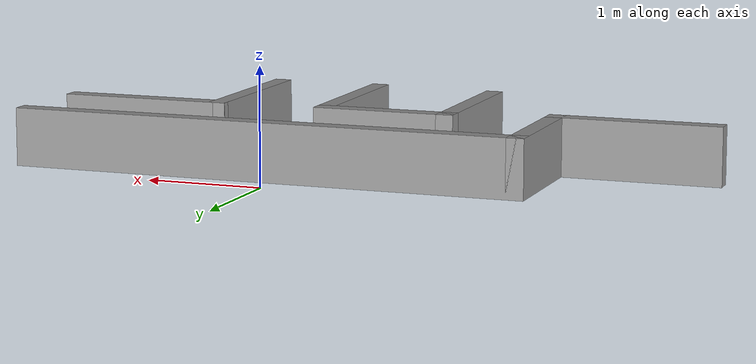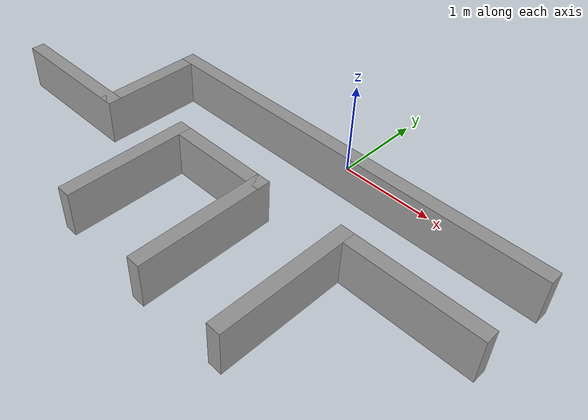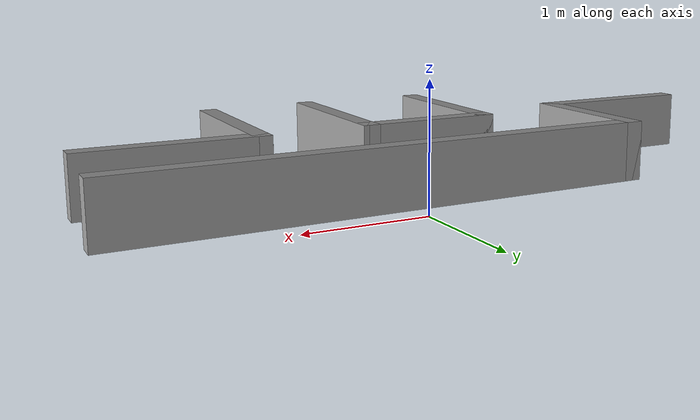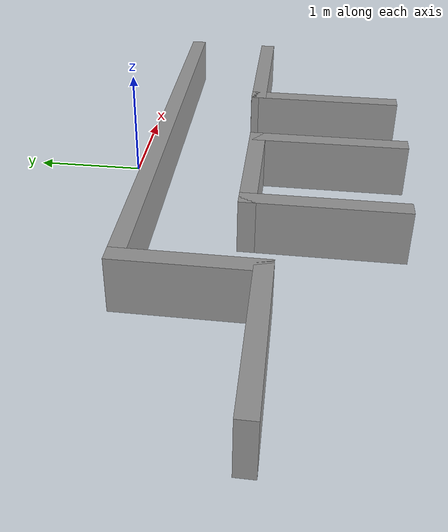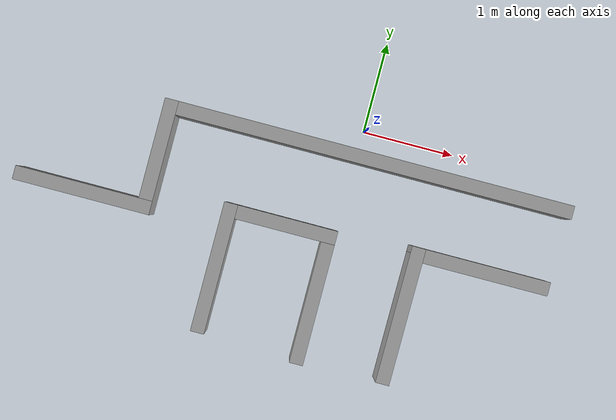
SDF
<?xml version='1.0'?>
<sdf version='1.7'>
  <model name='paredes-labirinto'>
    <pose>-0.58 -1.2975 0 0 -0 0</pose>
    <link name='Wall_0'>
      <collision name='Wall_0_Collision'>
        <geometry>
          <box>
            <size>1.5 0.15 0.5</size>
          </box>
        </geometry>
        <pose>0 0 0.25 0 -0 0</pose>
      </collision>
      <visual name='Wall_0_Visual'>
        <pose>0 0 0.25 0 -0 0</pose>
        <geometry>
          <box>
            <size>1.5 0.15 0.5</size>
          </box>
        </geometry>
        <material>
          <script>
            <uri>file://media/materials/scripts/gazebo.material</uri>
            <name>Gazebo/Grey</name>
          </script>
          <ambient>0.466667 0.462745 0.482353 1</ambient>
        </material>
        <meta>
          <layer>0</layer>
        </meta>
      </visual>
      <pose>-2.175 -0.0925 0 0 -0 3.14159</pose>
    </link>
    <link name='Wall_11'>
      <collision name='Wall_11_Collision'>
        <geometry>
          <box>
            <size>1.50059 0.15 0.5</size>
          </box>
        </geometry>
        <pose>0 0 0.25 0 -0 0</pose>
      </collision>
      <visual name='Wall_11_Visual'>
        <pose>0 0 0.25 0 -0 0</pose>
        <geometry>
          <box>
            <size>1.50059 0.15 0.5</size>
          </box>
        </geometry>
        <material>
          <script>
            <uri>file://media/materials/scripts/gazebo.material</uri>
            <name>Gazebo/Grey</name>
          </script>
          <ambient>0.466667 0.462745 0.482353 1</ambient>
        </material>
        <meta>
          <layer>0</layer>
        </meta>
      </visual>
      <pose>1.435 -0.5175 0 0 -0 1.56339</pose>
    </link>
    <link name='Wall_15'>
      <collision name='Wall_15_Collision'>
        <geometry>
          <box>
            <size>1.52 0.15 0.5</size>
          </box>
        </geometry>
        <pose>0 0 0.25 0 -0 0</pose>
      </collision>
      <visual name='Wall_15_Visual'>
        <pose>0 0 0.25 0 -0 0</pose>
        <geometry>
          <box>
            <size>1.52 0.15 0.5</size>
          </box>
        </geometry>
        <material>
          <script>
            <uri>file://media/materials/scripts/gazebo.material</uri>
            <name>Gazebo/Grey</name>
          </script>
          <ambient>0.466667 0.462745 0.482353 1</ambient>
        </material>
        <meta>
          <layer>0</layer>
        </meta>
      </visual>
      <pose>2.125 0.1575 0 0 -0 0</pose>
    </link>
    <link name='Wall_2'>
      <collision name='Wall_2_Collision'>
        <geometry>
          <box>
            <size>1.25 0.15 0.5</size>
          </box>
        </geometry>
        <pose>0 0 0.25 0 -0 0</pose>
      </collision>
      <visual name='Wall_2_Visual'>
        <pose>0 0 0.25 0 -0 0</pose>
        <geometry>
          <box>
            <size>1.25 0.15 0.5</size>
          </box>
        </geometry>
        <material>
          <script>
            <uri>file://media/materials/scripts/gazebo.material</uri>
            <name>Gazebo/Grey</name>
          </script>
          <ambient>0.466667 0.462745 0.482353 1</ambient>
        </material>
        <meta>
          <layer>0</layer>
        </meta>
      </visual>
      <pose>-1.5 0.4575 0 0 -0 1.5708</pose>
    </link>
    <link name='Wall_3'>
      <collision name='Wall_3_Collision'>
        <geometry>
          <box>
            <size>4.5 0.15 0.5</size>
          </box>
        </geometry>
        <pose>0 0 0.25 0 -0 0</pose>
      </collision>
      <visual name='Wall_3_Visual'>
        <pose>0 0 0.25 0 -0 0</pose>
        <geometry>
          <box>
            <size>4.5 0.15 0.5</size>
          </box>
        </geometry>
        <material>
          <script>
            <uri>file://media/materials/scripts/gazebo.material</uri>
            <name>Gazebo/Grey</name>
          </script>
          <ambient>0.466667 0.462745 0.482353 1</ambient>
        </material>
        <meta>
          <layer>0</layer>
        </meta>
      </visual>
      <pose>0.675 1.0075 0 0 -0 0</pose>
    </link>
    <link name='Wall_5'>
      <collision name='Wall_5_Collision'>
        <geometry>
          <box>
            <size>1.42 0.15 0.5</size>
          </box>
        </geometry>
        <pose>0 0 0.25 0 -0 0</pose>
      </collision>
      <visual name='Wall_5_Visual'>
        <pose>0 0 0.25 0 -0 0</pose>
        <geometry>
          <box>
            <size>1.42 0.15 0.5</size>
          </box>
        </geometry>
        <material>
          <script>
            <uri>file://media/materials/scripts/gazebo.material</uri>
            <name>Gazebo/Grey</name>
          </script>
          <ambient>0.466667 0.462745 0.482353 1</ambient>
        </material>
        <meta>
          <layer>0</layer>
        </meta>
      </visual>
      <pose>-0.61 -0.5325 0 0 -0 -1.5708</pose>
    </link>
    <link name='Wall_7'>
      <collision name='Wall_7_Collision'>
        <geometry>
          <box>
            <size>1.25 0.15 0.5</size>
          </box>
        </geometry>
        <pose>0 0 0.25 0 -0 0</pose>
      </collision>
      <visual name='Wall_7_Visual'>
        <pose>0 0 0.25 0 -0 0</pose>
        <geometry>
          <box>
            <size>1.25 0.15 0.5</size>
          </box>
        </geometry>
        <material>
          <script>
            <uri>file://media/materials/scripts/gazebo.material</uri>
            <name>Gazebo/Grey</name>
          </script>
          <ambient>0.466667 0.462745 0.482353 1</ambient>
        </material>
        <meta>
          <layer>0</layer>
        </meta>
      </visual>
      <pose>-0.06 0.1025 0 0 -0 0</pose>
    </link>
    <link name='Wall_9'>
      <collision name='Wall_9_Collision'>
        <geometry>
          <box>
            <size>1.475 0.15 0.5</size>
          </box>
        </geometry>
        <pose>0 0 0.25 0 -0 0</pose>
      </collision>
      <visual name='Wall_9_Visual'>
        <pose>0 0 0.25 0 -0 0</pose>
        <geometry>
          <box>
            <size>1.475 0.15 0.5</size>
          </box>
        </geometry>
        <material>
          <script>
            <uri>file://media/materials/scripts/gazebo.material</uri>
            <name>Gazebo/Grey</name>
          </script>
          <ambient>0.466667 0.462745 0.482353 1</ambient>
        </material>
        <meta>
          <layer>0</layer>
        </meta>
      </visual>
      <pose>0.49 -0.56 0 0 -0 -1.5708</pose>
    </link>
    <static>1</static>
  </model>
</sdf>
